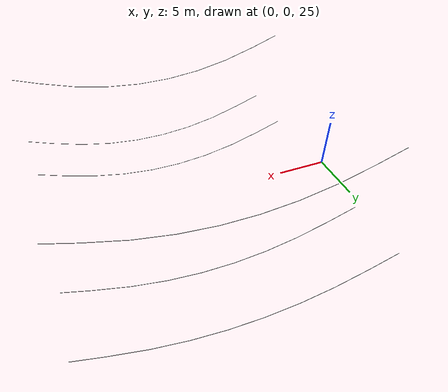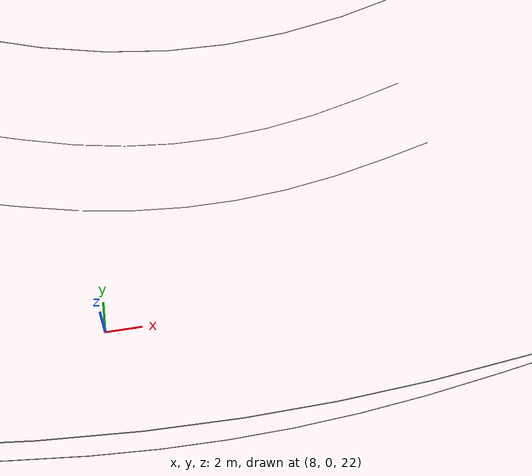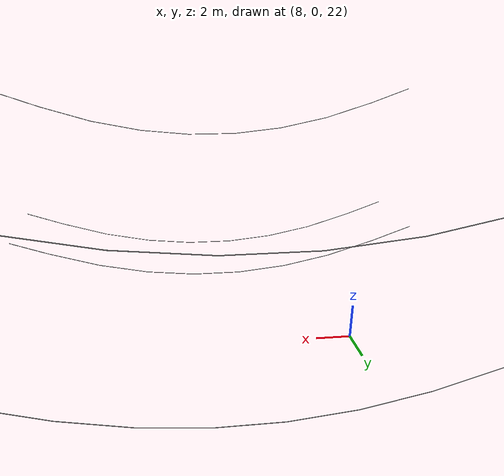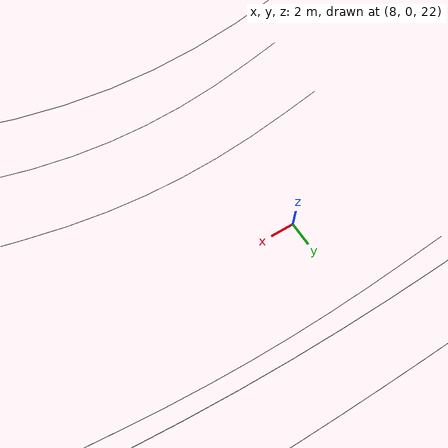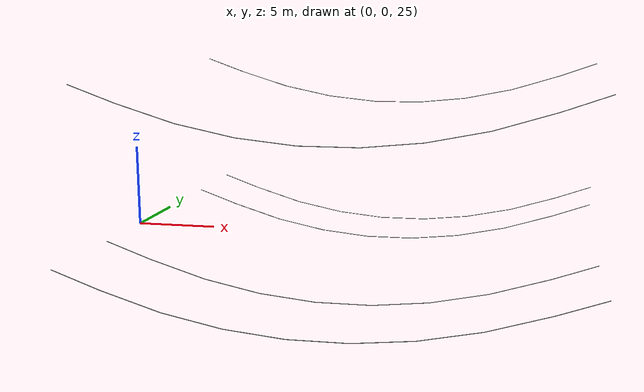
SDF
<?xml version="1.0"?>
<sdf version="1.5">
  <model name="power_tower_danube_wires">
    <static>true</static>
    <link name="link">
      <pose>0 0 0 0 0 0</pose>

      <visual name="visual">
        <cast_shadows>false</cast_shadows>
        <geometry>
          <mesh>
            <uri>
              model://power_tower_danube_wires/meshes/power_tower_danube_wires.dae
            </uri>
            <scale>0.75 2 2</scale> <!-- scale 1 equals to length of 40 meters.
            It is recommended to only change X scaling -->
          </mesh>
        </geometry>
      </visual>

      <collision name="collision">
        <geometry>
          <mesh>
            <uri>
              model://power_tower_danube_wires/meshes/power_tower_danube_wires.dae
            </uri>
            <scale>1 1 1</scale> <!-- scale 1 equals to length of 40 meters. It
            is recommended to only change X scaling -->
          </mesh>
        </geometry>
      </collision>

    </link>
  </model>
</sdf>
